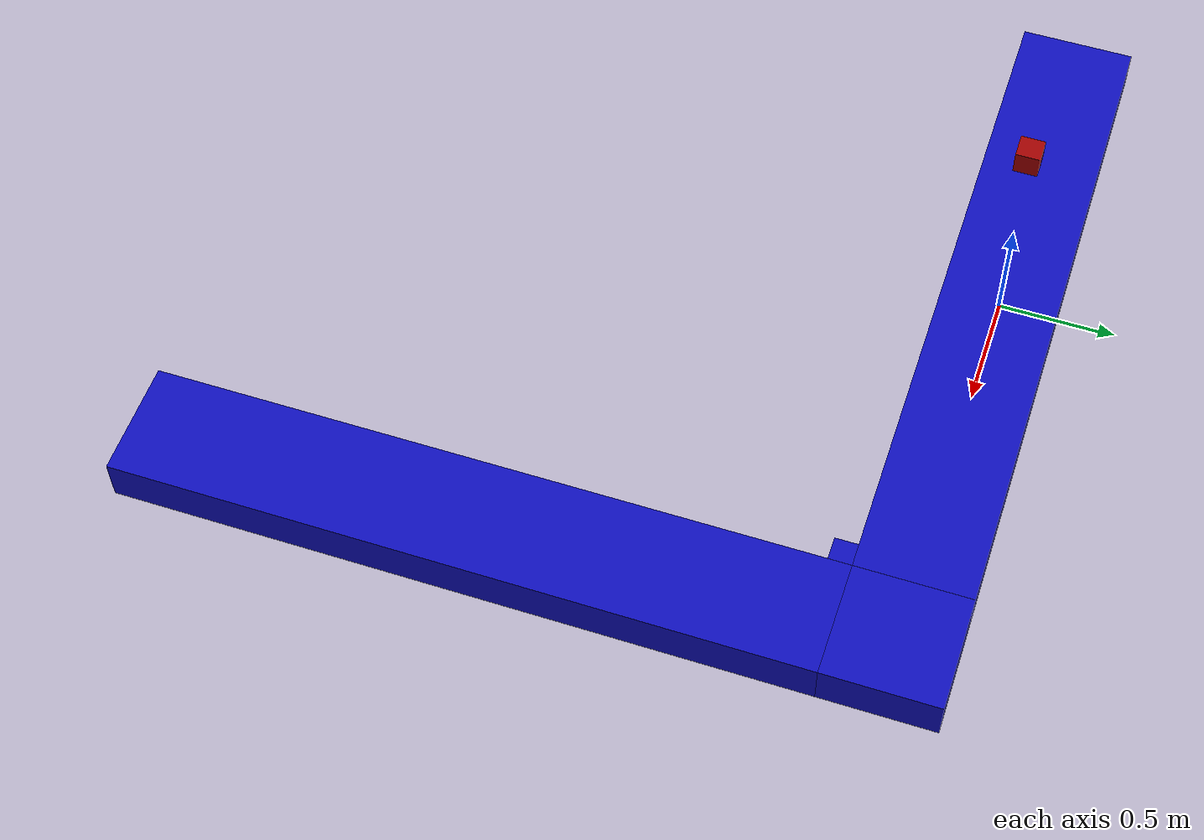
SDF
<?xml version="1.0" ?>
<sdf version="1.7">
    <world name="default">
        <physics name="4ms" type="ignored">
            <max_step_size>0.004</max_step_size>
            <real_time_factor>1.0</real_time_factor>
        </physics>
        <plugin
                filename="gz-sim-physics-system"
                name="gz::sim::systems::Physics">
        </plugin>
        <plugin
                filename="gz-sim-user-commands-system"
                name="gz::sim::systems::UserCommands">
        </plugin>
        <plugin
                filename="gz-sim-scene-broadcaster-system"
                name="gz::sim::systems::SceneBroadcaster">
        </plugin>

        <scene>
            <ambient>1.0 1.0 1.0</ambient>
            <background>0.8 0.8 0.8</background>
        </scene>

        <light type="directional" name="sun">
            <cast_shadows>true</cast_shadows>
            <pose>0 0 10 0 0 0</pose>
            <diffuse>0.8 0.8 0.8 1</diffuse>
            <specular>0.8 0.8 0.8 1</specular>
            <attenuation>
                <range>1000</range>
                <constant>0.9</constant>
                <linear>0.01</linear>
                <quadratic>0.001</quadratic>
            </attenuation>
            <direction>-0.5 0.1 -0.9</direction>
        </light>

        <model name="conveyor">
            <static>1</static>
            <link name='fwd_conv'>
                <pose relative_to='__model__'>0 0 0 0 0 0</pose>
                <inertial>
                    <mass>5</mass>
                    <inertia>
                        <ixx>1.733</ixx>
                        <ixy>0</ixy>
                        <ixz>0</ixz>
                        <iyy>1.733</iyy>
                        <iyz>0</iyz>
                        <izz>3.33</izz>
                    </inertia>
                </inertial>
                <collision name='main_collision'>
                    <pose relative_to='fwd_conv'>0 0 0 0 0 0</pose>
                    <geometry>
                        <box>
                            <size>3 0.5 0.2</size>
                        </box>
                    </geometry>
                    <surface>
                        <friction>
                            <ode>
                                <mu>0.7</mu>
                                <mu2>150</mu2>
                                <fdir1>0 1 0</fdir1>
                            </ode>
                        </friction>
                    </surface>
                </collision>

                <visual name='main_visual'>
                    <pose relative_to='fwd_conv'>0 0 0 0 0 0</pose>
                    <geometry>
                        <box>
                            <size>3 0.5 0.2</size>
                        </box>
                    </geometry>
                    <material>
                        <ambient>0.05 0.05 0.70 1</ambient>
                        <diffuse>0.05 0.05 0.70 1</diffuse>
                        <specular>0.8 0.8 0.8 1</specular>
                    </material>
                </visual>
                <gravity>1</gravity>
                <kinematic>0</kinematic>
            </link>

            <link name='right_conv'>
                <pose relative_to='__model__'>1.75 -1.75 0 0 0 -1.57079</pose>
                <inertial>
                    <mass>5</mass>
                    <inertia>
                        <ixx>1.733</ixx>
                        <ixy>0</ixy>
                        <ixz>0</ixz>
                        <iyy>1.733</iyy>
                        <iyz>0</iyz>
                        <izz>3.33</izz>
                    </inertia>
                </inertial>
                <collision name='main_collision'>
                    <pose relative_to='right_conv'>0 0 0 0 0 0</pose>
                    <geometry>
                        <box>
                            <size>3 0.5 0.2</size>
                        </box>
                    </geometry>
                    <surface>
                        <friction>
                            <ode>
                                <mu>0.7</mu>
                                <mu2>150</mu2>
                                <fdir1>0 1 0</fdir1>
                            </ode>
                        </friction>
                    </surface>
                </collision>

                <visual name='main_visual'>
                    <pose relative_to='right_conv'>0 0 0 0 0 0</pose>
                    <geometry>
                        <box>
                            <size>3 0.5 0.2</size>
                        </box>
                    </geometry>
                    <material>
                        <ambient>0.05 0.05 0.70 1</ambient>
                        <diffuse>0.05 0.05 0.70 1</diffuse>
                        <specular>0.8 0.8 0.8 1</specular>
                    </material>
                </visual>
                <gravity>1</gravity>
                <kinematic>0</kinematic>
            </link>

            <link name='rot_conv'>
                <pose relative_to='__model__'>1.75 0 0 0 0 0</pose>
                <inertial>
                    <mass>5</mass>
                    <inertia>
                        <ixx>1.733</ixx>
                        <ixy>0</ixy>
                        <ixz>0</ixz>
                        <iyy>1.733</iyy>
                        <iyz>0</iyz>
                        <izz>3.33</izz>
                    </inertia>
                </inertial>
                <collision name='main_collision'>
                    <pose relative_to='rot_conv'>0 0 0 0 0 0</pose>
                    <geometry>
                        <box>
                            <size>0.5 0.5 0.2</size>
                        </box>
                    </geometry>
                    <surface>
                        <friction>
                            <ode>
                                <mu>0.7</mu>
                                <mu2>150</mu2>
                                <fdir1>0 1 0</fdir1>
                            </ode>
                        </friction>
                    </surface>
                </collision>

                <visual name='main_visual'>
                    <pose relative_to='rot_conv'>0 0 0 0 0 0</pose>
                    <geometry>
                        <box>
                            <size>0.5 0.5 0.2</size>
                        </box>
                    </geometry>
                    <material>
                        <ambient>0.05 0.05 0.70 1</ambient>
                        <diffuse>0.05 0.05 0.70 1</diffuse>
                        <specular>0.8 0.8 0.8 1</specular>
                    </material>
                </visual>
                <gravity>1</gravity>
                <kinematic>0</kinematic>
            </link>

            <link name='rot_support'>
                <pose relative_to='__model__'>1.45 -0.3 0 0 0 0</pose>
                <inertial>
                    <mass>5</mass>
                    <inertia>
                        <ixx>1.733</ixx>
                        <ixy>0</ixy>
                        <ixz>0</ixz>
                        <iyy>1.733</iyy>
                        <iyz>0</iyz>
                        <izz>3.33</izz>
                    </inertia>
                </inertial>
                <collision name='main_collision'>
                    <pose relative_to='rot_support'>0 0 0 0 0 0</pose>
                    <geometry>
                        <box>
                            <size>0.1 0.1 0.2</size>
                        </box>
                    </geometry>
                    <surface>
                        <friction>
                            <ode>
                                <mu>0.7</mu>
                                <mu2>150</mu2>
                                <fdir1>0 1 0</fdir1>
                            </ode>
                        </friction>
                    </surface>
                </collision>
                <visual name='main_visual'>
                    <pose relative_to='rot_support'>0 0 0 0 0 0</pose>
                    <geometry>
                        <box>
                            <size>0.1 0.1 0.2</size>
                        </box>
                    </geometry>
                    <material>
                        <ambient>0.05 0.05 0.70 1</ambient>
                        <diffuse>0.05 0.05 0.70 1</diffuse>
                        <specular>0.8 0.8 0.8 1</specular>
                    </material>
                </visual>
            </link>

            <plugin name="gz::sim::systems::TrackedVehicle" filename="gz-sim-tracked-vehicle-system">
                <left_track><link>rot_conv</link></left_track>
                <right_track><link>rot_support</link></right_track>
                <tracks_separation>0.4</tracks_separation>
                <tracks_height>0.2</tracks_height>
                <steering_efficiency>0.5</steering_efficiency>
            </plugin>

            <plugin filename="gz-sim-track-controller-system"
                    name="gz::sim::systems::TrackController">
                <link>rot_conv</link>
                <odometry_publish_frequency>1</odometry_publish_frequency>

            </plugin>

            <plugin filename="gz-sim-track-controller-system"
                    name="gz::sim::systems::TrackController">
                <link>rot_support</link>
                <odometry_publish_frequency>1</odometry_publish_frequency>

            </plugin>

            <plugin filename="gz-sim-track-controller-system"
                    name="gz::sim::systems::TrackController">
                <link>fwd_conv</link>
                <odometry_publish_frequency>1</odometry_publish_frequency>

            </plugin>
            <plugin filename="gz-sim-track-controller-system"
                    name="gz::sim::systems::TrackController">
                <link>right_conv</link>
                <odometry_publish_frequency>1</odometry_publish_frequency>

            </plugin>

            <!-- Moving Forward: W -->
            <plugin filename="gz-sim-triggered-publisher-system"
                    name="gz::sim::systems::TriggeredPublisher">
                <input type="gz.msgs.Int32" topic="/keyboard/keypress">
                    <match field="data">87</match>
                </input>
                <output type="gz.msgs.Double" topic="/model/conveyor/link/base_link/track_cmd_vel">
                    data: 1.0
                </output>
            </plugin>

            <!-- Moving Backward: X -->
            <plugin filename="gz-sim-triggered-publisher-system"
                    name="gz::sim::systems::TriggeredPublisher">
                <input type="gz.msgs.Int32" topic="/keyboard/keypress">
                    <match field="data">88</match>
                </input>
                <output type="gz.msgs.Double" topic="/model/conveyor/link/base_link/track_cmd_vel">
                    data: -1.0
                </output>
            </plugin>

            <!-- Stop: S -->
            <plugin filename="gz-sim-triggered-publisher-system"
                    name="gz::sim::systems::TriggeredPublisher">
                <input type="gz.msgs.Int32" topic="/keyboard/keypress">
                    <match field="data">83</match>
                </input>
                <output type="gz.msgs.Double" topic="/model/conveyor/link/base_link/track_cmd_vel">
                    data: 0.0
                </output>
            </plugin>
        </model>

        <model name='box'>
            <pose>0 0 1 0 0 0</pose>
            <link name='base_link'>
                <inertial>
                    <mass>1.06</mass>
                    <inertia>
                        <ixx>0.01</ixx>
                        <ixy>0</ixy>
                        <ixz>0</ixz>
                        <iyy>0.01</iyy>
                        <iyz>0</iyz>
                        <izz>0.01</izz>
                    </inertia>
                </inertial>
                <visual name='main_visual'>
                    <pose relative_to='base_link'>0 0 0 0 0 0</pose>
                    <geometry>
                        <box>
                            <size>0.1 0.1 0.1</size>
                        </box>
                    </geometry>
                    <material>
                        <ambient>0.60 0.0 0.0 1</ambient>
                        <diffuse>0.60 0.0 0.0 1</diffuse>
                        <specular>0.8 0.8 0.8 1</specular>
                    </material>
                </visual>
                <collision name='main_collision'>
                    <geometry>
                        <box>
                            <size>0.1 0.1 0.1</size>
                        </box>
                    </geometry>
                    <pose relative_to='base_link'>0 0 0 0 0 0</pose>
                </collision>
            </link>
        </model>

        <gui fullscreen="0">
            <!-- 3D scene -->
            <plugin filename="MinimalScene" name="3D View">
              <gz-gui>
                <title>3D View</title>
                <property type="bool" key="showTitleBar">false</property>
                <property type="string" key="state">docked</property>
              </gz-gui>

              <engine>ogre2</engine>
              <scene>scene</scene>
              <ambient_light>0.4 0.4 0.4</ambient_light>
              <background_color>0.8 0.8 0.8</background_color>
              <camera_pose>-6 0 6 0 0.5 0</camera_pose>
            </plugin>

            <!-- Plugins that add functionality to the scene -->
            <plugin filename="EntityContextMenuPlugin" name="Entity context menu">
              <gz-gui>
                <property key="state" type="string">floating</property>
                <property key="width" type="double">5</property>
                <property key="height" type="double">5</property>
                <property key="showTitleBar" type="bool">false</property>
              </gz-gui>
            </plugin>
            <plugin filename="GzSceneManager" name="Scene Manager">
              <gz-gui>
                <property key="resizable" type="bool">false</property>
                <property key="width" type="double">5</property>
                <property key="height" type="double">5</property>
                <property key="state" type="string">floating</property>
                <property key="showTitleBar" type="bool">false</property>
              </gz-gui>
            </plugin>
            <plugin filename="InteractiveViewControl" name="Interactive view control">
              <gz-gui>
                <property key="resizable" type="bool">false</property>
                <property key="width" type="double">5</property>
                <property key="height" type="double">5</property>
                <property key="state" type="string">floating</property>
                <property key="showTitleBar" type="bool">false</property>
              </gz-gui>
            </plugin>
            <plugin filename="CameraTracking" name="Camera Tracking">
              <gz-gui>
                <property key="resizable" type="bool">false</property>
                <property key="width" type="double">5</property>
                <property key="height" type="double">5</property>
                <property key="state" type="string">floating</property>
                <property key="showTitleBar" type="bool">false</property>
              </gz-gui>
            </plugin>

            <plugin name='World control' filename='WorldControl'>
                <gz-gui>
                    <title>World control</title>
                    <property type='bool' key='showTitleBar'>0</property>
                    <property type='bool' key='resizable'>0</property>
                    <property type='double' key='height'>72</property>
                    <property type='double' key='width'>150</property>
                    <property type='double' key='z'>1</property>
                    <property type='string' key='state'>floating</property>
                    <anchors target='3D View'>
                        <line own='left' target='left'/>
                        <line own='bottom' target='bottom'/>
                    </anchors>
                </gz-gui>
                <play_pause>1</play_pause>
                <step>1</step>
                <start_paused>0</start_paused>
            </plugin>

            <!-- World statistics -->
            <plugin filename="WorldStats" name="World stats">
                <gz-gui>
                    <title>World stats</title>
                    <property type="bool" key="showTitleBar">false</property>
                    <property type="bool" key="resizable">false</property>
                    <property type="double" key="height">110</property>
                    <property type="double" key="width">290</property>
                    <property type="double" key="z">1</property>

                    <property type="string" key="state">floating</property>
                    <anchors target="3D View">
                        <line own="right" target="right"/>
                        <line own="bottom" target="bottom"/>
                    </anchors>
                </gz-gui>

                <sim_time>true</sim_time>
                <real_time>true</real_time>
                <real_time_factor>true</real_time_factor>
                <iterations>true</iterations>
            </plugin>

            <!-- Translate / rotate -->
            <plugin filename="TransformControl" name="Transform control">
                <gz-gui>
                    <title>Transform control</title>
                    <anchors target="3D View">
                        <line own="left" target="left"/>
                        <line own="top" target="top"/>
                    </anchors>
                    <property key="resizable" type="bool">false</property>
                    <property key="width" type="double">230</property>
                    <property key="height" type="double">50</property>
                    <property key="state" type="string">floating</property>
                    <property key="showTitleBar" type="bool">false</property>
                    <property key="cardBackground" type="string">#666666</property>
                </gz-gui>
            </plugin>

            <!-- Insert simple shapes -->
            <plugin filename="Shapes" name="Shapes">
                <gz-gui>
                    <anchors target="Transform control">
                        <line own="left" target="right"/>
                        <line own="top" target="top"/>
                    </anchors>
                    <property key="resizable" type="bool">false</property>
                    <property key="width" type="double">200</property>
                    <property key="height" type="double">50</property>
                    <property key="state" type="string">floating</property>
                    <property key="showTitleBar" type="bool">false</property>
                    <property key="cardBackground" type="string">#666666</property>
                </gz-gui>
            </plugin>

            <plugin filename="KeyPublisher" name="Key publisher">
                <gz-gui>
                    <anchors target="3D View">
                        <line own="right" target="right"/>
                        <line own="top" target="top"/>
                    </anchors>
                    <property key="resizable" type="bool">false</property>
                    <property key="width" type="double">5</property>
                    <property key="height" type="double">5</property>
                    <property key="state" type="string">floating</property>
                    <property key="showTitleBar" type="bool">false</property>
                </gz-gui>
            </plugin>

            <plugin filename="VisualizeContacts" name="Visualize Contacts">
                <gz-gui>
                    <title>Visualize Contacts</title>
                    <anchors target="3D View">
                        <line own="right" target="right"/>
                        <line own="top" target="top"/>
                    </anchors>
                    <property key="resizable" type="bool">false</property>
                    <property key="width" type="double">230</property>
                    <property key="height" type="double">50</property>
                    <property key="state" type="string">floating</property>
                    <property key="showTitleBar" type="bool">false</property>
                    <property key="cardBackground" type="string">#ffffff</property>
                </gz-gui>
            </plugin>
        </gui>
    </world>
</sdf>
